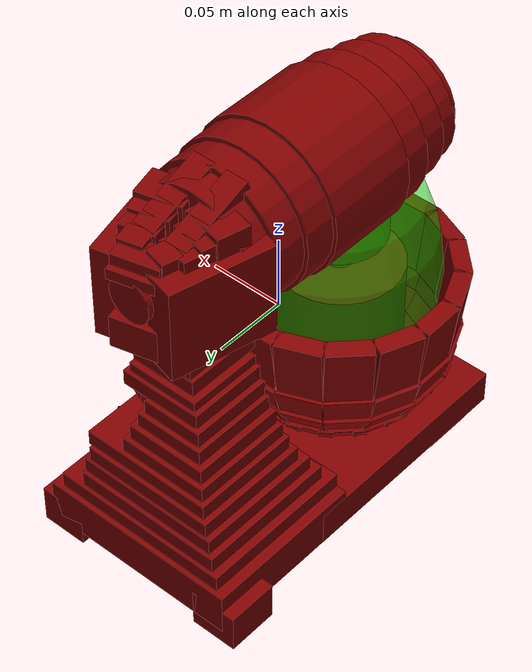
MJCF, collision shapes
<?xml version='1.0' encoding='UTF-8'?>
<mujoco model="model">
  <option timestep="0.002" gravity="0.0 0.0 -9.81"/>
  <compiler angle="radian"/>
  <asset>
    <mesh file="visuals/blender.obj" name="blender_vis"/>
    <mesh file="visuals/bowl.obj" name="bowl_vis"/>
    <mesh file="visuals/button_head_lock.obj" name="button_head_lock_vis"/>
    <mesh file="visuals/head.obj" name="head_vis"/>
    <mesh file="visuals/knob_speed.obj" name="knob_speed_vis"/>
    <mesh file="visuals/Body001.obj" name="Body001_vis"/>
    <texture file="visuals/T_BC001.png" name="Body001_material" type="2d"/>
    <material name="Body001_material" rgba="1 1 1 1.0" texture="Body001_material" shininess="0.1472135901451111" specular="0.657381"/>
    <texture file="visuals/T_BC001.png" name="bowl_material" type="2d"/>
    <material name="bowl_material" rgba="1 1 1 1.0" texture="bowl_material" shininess="0.1472135901451111" specular="1"/>
    <texture file="visuals/T_BC001.png" name="button_head_lock_material" type="2d"/>
    <material name="button_head_lock_material" rgba="1 1 1 1.0" texture="button_head_lock_material" shininess="0.1472135901451111" specular="0.657381"/>
    <texture file="visuals/T_BC001.png" name="head_material" type="2d"/>
    <material name="head_material" rgba="1 1 1 1.0" texture="head_material" shininess="0.4472135901451111" specular="0.3103448502657381"/>
    <texture file="visuals/T_BC001.png" name="blender_material" type="2d"/>
    <material name="blender_material" rgba="1 1 1 1.0" texture="blender_material" shininess="0.4472135901451111" specular="5"/>
    <texture file="visuals/T_BC001.png" name="knob_speed_material" type="2d"/>
    <material name="knob_speed_material" rgba="1 1 1 1.0" texture="knob_speed_material" shininess="0.4472135901451111" specular="0.3103448502657381"/>
  </asset>
  <default>
    <default class="visual">
      <geom conaffinity="0" contype="0" group="1" type="mesh"/>
    </default>
    <default class="collision">
      <geom group="0" rgba="0.5 0 0 0.5"/>
    </default>
    <default class="spawn">
      <geom group="0" rgba="1 1 1 0.5" contype="0" conaffinity="0"/>
      <site group="0" rgba="1 1 1 0.5"/>
    </default>
    <default class="region">
      <geom group="1" conaffinity="0" contype="0" rgba="0 1 0 0"/>
    </default>
  </default>
  <worldbody>
    <body>
      <body name="object">
        <geom mesh="Body001_vis" type="mesh" solimp="0.998 0.998 0.001" solref="0.001 1" friction="0.95 0.3 0.1" class="visual" material="Body001_material"/>
        <geom type="box" pos="0.00090541 0.07212468 -0.11507635" size="0.06909153610467911 0.0555466003715992 0.014421489089727402" quat="1.0 0.0 0.0 0.0" class="collision"/>
        <geom type="box" pos="-0.01017426 0.07840834 -0.04378773" size="0.031024672091007233 0.034848056733608246 0.005275134462863207" quat="1.0 0.0 0.0 0.0" class="collision"/>
        <geom type="box" pos="0.00080430 0.07091529 -0.09522438" size="0.06219308078289032 0.053709082305431366 0.005275134462863207" quat="1.0 0.0 0.0 0.0" class="collision"/>
        <geom type="box" pos="-0.00245736 0.07580597 -0.07429464" size="0.04955200105905533 0.04438085854053497 0.005275134462863207" quat="1.0 0.0 0.0 0.0" class="collision"/>
        <geom type="box" pos="-0.00449582 0.07408720 -0.08453226" size="0.051713284105062485 0.04852152243256569 0.005275134462863207" quat="1.0 0.0 0.0 0.0" class="collision"/>
        <geom type="box" pos="-0.00211854 0.07833359 -0.06394648" size="0.04600217193365097 0.04029778018593788 0.005275134462863207" quat="1.0 0.0 0.0 0.0" class="collision"/>
        <geom type="box" pos="0.00103503 0.07883264 -0.05386711" size="0.045344870537519455 0.037232231348752975 0.005275134462863207" quat="1.0 0.0 0.0 0.0" class="collision"/>
        <geom type="box" pos="-0.00991501 0.07722230 -0.02287789" size="0.02389548346400261 0.02974225953221321 0.005275134462863207" quat="1.0 0.0 0.0 0.0" class="collision"/>
        <geom type="box" pos="-0.01022610 0.07803503 -0.03314391" size="0.02770635485649109 0.032234884798526764 0.005275134462863207" quat="1.0 0.0 0.0 0.0" class="collision"/>
        <geom type="box" pos="-0.01008352 0.07579107 -0.01261186" size="0.02069382555782795 0.028311023488640785 0.005275134462863207" quat="1.0 0.0 0.0 0.0" class="collision"/>
        <geom type="box" pos="0.00093781 0.07443782 -0.00262581" size="0.028137603774666786 0.02695777267217636 0.005275134462863207" quat="1.0 0.0 0.0 0.0" class="collision"/>
        <geom type="box" pos="0.00101559 0.07331788 0.00579673" size="0.024948909878730774 0.025837844237685204 0.0033383138943463564" quat="1.0 0.0 0.0 0.0" class="collision"/>
        <geom type="box" pos="0.00090541 -0.04308769 -0.11817537" size="0.06909153610467911 0.08008985221385956 0.011497527360916138" quat="1.0 0.0 0.0 0.0" class="collision"/>
        <geom type="box" pos="-0.06082251 0.11042195 -0.12574148" size="0.015855111181735992 0.017249327152967453 0.013206470757722855" quat="1.0 0.0 0.0 0.0" class="collision"/>
        <geom type="box" pos="0.06235080 0.11042195 -0.12574148" size="0.015855111181735992 0.017249327152967453 0.013206470757722855" quat="1.0 0.0 0.0 0.0" class="collision"/>
        <geom type="box" pos="0.05597572 -0.09204621 -0.12574148" size="0.009480033069849014 0.017249327152967453 0.013206470757722855" quat="1.0 0.0 0.0 0.0" class="collision"/>
        <geom type="box" pos="-0.05405603 -0.09204621 -0.12574148" size="0.009480033069849014 0.017249327152967453 0.013206470757722855" quat="1.0 0.0 0.0 0.0" class="collision"/>
        <geom type="box" pos="0.05597572 -0.09204621 -0.12574148" size="0.009480033069849014 0.017249327152967453 0.013206470757722855" quat="1.0 0.0 0.0 0.0" class="collision"/>
        <body name="bowl">
          <geom mesh="bowl_vis" type="mesh" solimp="0.998 0.998 0.001" solref="0.001 1" friction="0.95 0.3 0.1" class="visual" material="bowl_material"/>
          <geom type="box" pos="-0.00134412 -0.12422087 -0.02438593" size="0.014861696399748325 0.005788303446024656 0.022114291787147522" quat="0.06294766813516617 -0.9980168342590332 2.2160424043668768e-16 -8.28914765480975e-24" class="collision"/>
          <geom type="box" pos="-0.00134412 -0.12275018 -0.05442249" size="0.014861696399748325 0.004200310911983252 0.009575771167874336" quat="0.1358821839094162 -0.9907249808311462 2.1998653985632997e-16 -9.129735905080095e-23" class="collision"/>
          <geom type="box" pos="-0.00134412 -0.11773674 -0.07120506" size="0.014861696399748325 0.004200310911983252 0.009575771167874336" quat="0.2822636663913727 -0.9593368768692017 2.130155910493251e-16 -6.397050416368678e-23" class="collision"/>
          <geom type="box" pos="-0.00134412 -0.10835347 -0.08678000" size="0.014861696399748325 0.004200310911983252 0.009575771167874336" quat="0.3630664646625519 -0.931763231754303 2.068930913227832e-16 -5.347705115888792e-23" class="collision"/>
          <geom type="box" pos="-0.00134412 -0.09558712 -0.09814205" size="0.014861696399748325 0.004200309980660677 0.009575771167874336" quat="0.5544174909591675 -0.8322386741638184 1.847941473127063e-16 -6.556123271273409e-23" class="collision"/>
          <geom type="box" pos="0.02993206 -0.08184658 -0.09814205" size="0.014861696399748325 0.004200309980660677 0.009575771167874336" quat="0.5075920820236206 -0.7619489431381226 -0.3347463309764862 0.2229999601840973" class="collision"/>
          <geom type="box" pos="0.05102099 -0.10121539 -0.02438597" size="0.014861696399748325 0.005788303446024656 0.022114291787147522" quat="0.05763139948248863 -0.9137255549430847 -0.4014264643192291 0.025319166481494904" class="collision"/>
          <geom type="box" pos="0.04993782 -0.10022056 -0.05442252" size="0.014861696399748325 0.004200310911983252 0.009575771167874336" quat="0.12440598011016846 -0.9070496559143066 -0.39849328994750977 0.05465516075491905" class="collision"/>
          <geom type="box" pos="0.04624538 -0.09682930 -0.07120509" size="0.014861696399748325 0.004200310911983252 0.009575771167874336" quat="0.25842416286468506 -0.8783124089241028 -0.3858684003353119 0.11353327333927155" class="collision"/>
          <geom type="box" pos="0.03933455 -0.09048215 -0.08678003" size="0.014861696399748325 0.004200310911983252 0.009575771167874336" quat="0.3324023187160492 -0.8530676960945129 -0.3747776448726654 0.1460341215133667" class="collision"/>
          <geom type="box" pos="0.05388274 -0.05236688 -0.08678005" size="0.014861696399748325 0.004200310911983252 0.009575771167874336" quat="0.2549673020839691 -0.6543397307395935 -0.6633414626121521 0.2584748864173889" class="collision"/>
          <geom type="box" pos="0.06326514 -0.05223868 -0.07120509" size="0.014861696399748325 0.004200310911983252 0.009575771167874336" quat="0.19822260737419128 -0.6737037897109985 -0.682971715927124 0.2009495049715042" class="collision"/>
          <geom type="box" pos="0.06827814 -0.05217019 -0.05442254" size="0.014861696399748325 0.004200310911983252 0.009575771167874336" quat="0.09542486071586609 -0.6957464218139648 -0.7053175568580627 0.09673759341239929" class="collision"/>
          <geom type="box" pos="0.06974872 -0.05215010 -0.02438598" size="0.014861696399748325 0.005788303446024656 0.022114291787147522" quat="0.04420587420463562 -0.700867235660553 -0.7105087637901306 0.04481399804353714" class="collision"/>
          <geom type="box" pos="0.04111758 -0.05254129 -0.09814205" size="0.014861696399748325 0.004200309980660677 0.009575771167874336" quat="0.389344722032547 -0.5844477415084839 -0.5924883484840393 0.3947012424468994" class="collision"/>
          <geom type="box" pos="0.02799422 -0.02241976 -0.09814205" size="0.014861696399748325 0.004200309980660677 0.009575771167874336" quat="0.20633824169635773 -0.30973535776138306 -0.7724540829658508 0.5145903825759888" class="collision"/>
          <geom type="box" pos="0.04777652 -0.00171817 -0.02438600" size="0.014861696399748325 0.005788303446024656 0.022114291787147522" quat="0.02342754602432251 -0.3714331388473511 -0.9263233542442322 0.0584261491894722" class="collision"/>
          <geom type="box" pos="0.04676044 -0.00278146 -0.05442255" size="0.014861696399748325 0.004200310911983252 0.009575771167874336" quat="-0.05057153105735779 0.36871933937072754 0.9195553064346313 -0.126121386885643" class="collision"/>
          <geom type="box" pos="0.04329678 -0.00640609 -0.07120509" size="0.014861696399748325 0.004200310911983252 0.009575771167874336" quat="0.10505060106515884 -0.35703763365745544 -0.8904219269752502 0.26198717951774597" class="collision"/>
          <geom type="box" pos="0.03681414 -0.01318998 -0.08678005" size="0.014861696399748325 0.004200310911983252 0.009575771167874336" quat="-0.13512299954891205 0.3467754125595093 0.8648290038108826 -0.33698570728302" class="collision"/>
          <geom type="box" pos="0.01901948 -0.00178045 -0.08678007" size="0.014861696399748325 0.004200310911983252 0.009575771167874336" quat="-0.06814071536064148 0.1748742014169693 0.9152055978775024 -0.35661545395851135" class="collision"/>
          <geom type="box" pos="0.02247901 0.00694179 -0.07120511" size="0.014861696399748325 0.004200310911983252 0.009575771167874336" quat="-0.052975501865148544 0.18004927039146423 0.942289412021637 -0.27724817395210266" class="collision"/>
          <geom type="box" pos="0.02432744 0.01160209 -0.05442257" size="0.014861696399748325 0.004200310911983252 0.009575771167874336" quat="0.02550266869366169 -0.18594017624855042 -0.9731197953224182 0.13346806168556213" class="collision"/>
          <geom type="box" pos="0.02486968 0.01296919 -0.02438602" size="0.014861696399748325 0.005788303446024656 0.022114291787147522" quat="0.011814260855317116 -0.18730878829956055 -0.9802820682525635 0.06182962656021118" class="collision"/>
          <geom type="box" pos="0.01431262 -0.01364743 -0.09814205" size="0.014861696399748325 0.004200309980660677 0.009575771167874336" quat="-0.1040535569190979 0.15619543194770813 0.8174498677253723 -0.5445654988288879" class="collision"/>
          <geom type="box" pos="-0.00155415 -0.01065632 -0.09814205" size="0.014861696399748325 0.004200309980660677 0.009575771167874336" quat="0.0013710921630263329 -0.002058016834780574 0.8322361707687378 -0.554415762424469" class="collision"/>
          <geom type="box" pos="-0.00169577 0.01797718 -0.02438604" size="0.014861696399748325 0.005788303446024656 0.022114291787147522" quat="-0.00015559075109194964 0.002468019025400281 -0.9980137348175049 0.06294814497232437" class="collision"/>
          <geom type="box" pos="-0.00168849 0.01650647 -0.05442259" size="0.014861696399748325 0.004200310911983252 0.009575771167874336" quat="-0.0003359524707775563 0.0024499923456460238 -0.9907218813896179 0.1358824521303177" class="collision"/>
          <geom type="box" pos="-0.00166370 0.01149305 -0.07120512" size="0.014861696399748325 0.004200310911983252 0.009575771167874336" quat="0.0006980891921557486 -0.00237234216183424 0.9593337774276733 -0.28226324915885925" class="collision"/>
          <geom type="box" pos="-0.00161729 0.00210988 -0.08678008" size="0.014861696399748325 0.004200310911983252 0.009575771167874336" quat="-0.000897764868568629 0.00230420078150928 -0.9317601323127747 0.36306604743003845" class="collision"/>
          <geom type="box" pos="-0.02240123 -0.00206096 -0.08678009" size="0.014861696399748325 0.004200310911983252 0.009575771167874336" quat="-0.07055433094501495 0.1810682713985443 -0.9140002131462097 0.3561460077762604" class="collision"/>
          <geom type="box" pos="-0.02597859 0.00661363 -0.07120514" size="0.014861696399748325 0.004200310911983252 0.009575771167874336" quat="-0.05485193431377411 0.18642659485340118 -0.9410483837127686 0.27688324451446533" class="collision"/>
          <geom type="box" pos="-0.02788997 0.01124846 -0.05442260" size="0.014861696399748325 0.004200310911983252 0.009575771167874336" quat="-0.02640584111213684 0.19252608716487885 -0.9718382358551025 0.13329249620437622" class="collision"/>
          <geom type="box" pos="-0.02845068 0.01260812 -0.02438605" size="0.014861696399748325 0.005788303446024656 0.022114291787147522" quat="0.012232762761414051 -0.19394321739673615 0.9789910912513733 -0.061748433858156204" class="collision"/>
          <geom type="box" pos="-0.01753408 -0.01386311 -0.09814205" size="0.014861696399748325 0.004200309980660677 0.009575771167874336" quat="0.10773929953575134 -0.16172783076763153 0.8163732886314392 -0.5438483357429504" class="collision"/>
          <geom type="box" pos="-0.03132925 -0.02305114 -0.09814205" size="0.014861696399748325 0.004200309980660677 0.009575771167874336" quat="0.21180303394794464 -0.31793850660324097 0.7691140174865723 -0.5123653411865234" class="collision"/>
          <geom type="box" pos="-0.05154772 -0.00277521 -0.02438606" size="0.014861696399748325 0.005788303446024656 0.022114291787147522" quat="0.02404821664094925 -0.3812703490257263 0.9223179221153259 -0.0581740103662014" class="collision"/>
          <geom type="box" pos="-0.05050923 -0.00381666 -0.05442262" size="0.014861696399748325 0.004200310911983252 0.009575771167874336" quat="-0.05191101133823395 0.37848442792892456 -0.9155792593955994 0.1255764216184616" class="collision"/>
          <geom type="box" pos="-0.04696919 -0.00736676 -0.07120515" size="0.014861696399748325 0.004200310911983252 0.009575771167874336" quat="-0.10783275961875916 0.3664934039115906 -0.8865717649459839 0.2608547508716583" class="collision"/>
          <geom type="box" pos="-0.04034362 -0.01401115 -0.08678011" size="0.014861696399748325 0.004200310911983252 0.009575771167874336" quat="0.13870200514793396 -0.3559594452381134 0.8610893487930298 -0.33552905917167664" class="collision"/>
          <geom type="box" pos="-0.05261741 -0.03258789 -0.08678014" size="0.014861696399748325 0.004200310911983252 0.009575771167874336" quat="0.2034848928451538 -0.5222156643867493 0.7716687321662903 -0.30068597197532654" class="collision"/>
          <geom type="box" pos="-0.06132816 -0.02909946 -0.07120519" size="0.014861696399748325 0.004200310911983252 0.009575771167874336" quat="0.15819789469242096 -0.5376695990562439 0.7945050001144409 -0.23376624286174774" class="collision"/>
          <geom type="box" pos="-0.06598232 -0.02723560 -0.05442266" size="0.014861696399748325 0.004200310911983252 0.009575771167874336" quat="0.07615723460912704 -0.5552616119384766 0.8205000162124634 -0.11253602802753448" class="collision"/>
          <geom type="box" pos="-0.06734766 -0.02668882 -0.02438611" size="0.014861696399748325 0.005788303446024656 0.022114291787147522" quat="-0.03528023138642311 0.5593484044075012 -0.8265390396118164 0.052133094519376755" class="collision"/>
          <geom type="box" pos="-0.04076607 -0.03733404 -0.09814205" size="0.014861696399748325 0.004200310446321964 0.009575771167874336" quat="0.31072869896888733 -0.4664364457130432 0.68924480676651 -0.4591583013534546" class="collision"/>
          <geom type="box" pos="-0.04379832 -0.05410808 -0.09814205" size="0.014861696399748325 0.004200309980660677 0.009575771167874336" quat="0.3965601623058319 -0.5952785015106201 0.5816054344177246 -0.3874514698982239" class="collision"/>
          <geom type="box" pos="-0.07242454 -0.05477334 -0.02438612" size="0.014861696399748325 0.005788303446024656 0.022114291787147522" quat="0.04502575099468231 -0.7138552665710449 0.6974583268165588 -0.04399153217673302" class="collision"/>
          <geom type="box" pos="-0.07095417 -0.05473917 -0.05442267" size="0.014861696399748325 0.004200310911983252 0.009575771167874336" quat="0.0971938967704773 -0.7086394429206848 0.6923624873161316 -0.09496141225099564" class="collision"/>
          <geom type="box" pos="-0.06594202 -0.05462269 -0.07120520" size="0.014861696399748325 0.004200310911983252 0.009575771167874336" quat="0.2018965184688568 -0.686188280582428 0.6704269647598267 -0.1972591131925583" class="collision"/>
          <geom type="box" pos="-0.05656125 -0.05440468 -0.08678015" size="0.014861696399748325 0.004200310911983252 0.009575771167874336" quat="0.25969287753105164 -0.6664654016494751 0.6511571407318115 -0.25372788310050964" class="collision"/>
          <geom type="box" pos="-0.05176507 -0.07566715 -0.08678017" size="0.014861696399748325 0.004200310911983252 0.009575771167874336" quat="0.3046526312828064 -0.781848132610321 0.5068483352661133 -0.19749704003334045" class="collision"/>
          <geom type="box" pos="-0.06033102 -0.07949741 -0.07120522" size="0.014861696399748325 0.004200310911983252 0.009575771167874336" quat="0.23685023188591003 -0.804985523223877 0.5218476057052612 -0.15354280173778534" class="collision"/>
          <geom type="box" pos="-0.06490780 -0.08154392 -0.05442269" size="0.014861696399748325 0.004200310911983252 0.009575771167874336" quat="0.11402078717947006 -0.8313233852386475 0.538922131061554 -0.07391627132892609" class="collision"/>
          <geom type="box" pos="-0.06625046 -0.08214429 -0.02438614" size="0.014861696399748325 0.005788303446024656 0.02211429364979267" quat="0.05282099172472954 -0.8374422788619995 0.5428884029388428 -0.03424224257469177" class="collision"/>
          <geom type="box" pos="-0.04011072 -0.07045593 -0.09814205" size="0.014861696399748325 0.004200309980660677 0.009575771167874336" quat="0.465215265750885 -0.6983368992805481 0.4527105987071991 -0.301584929227829" class="collision"/>
          <geom type="box" pos="-0.03079870 -0.08371167 -0.09814205" size="0.014861696399748325 0.004200309980660677 0.009575771167874336" quat="0.5141980051994324 -0.7718653082847595 0.311199814081192 -0.20731379091739655" class="collision"/>
          <geom type="box" pos="-0.05065950 -0.10433819 -0.02438616" size="0.014861696399748325 0.005788303446024656 0.022114291787147522" quat="0.058382660150527954 -0.9256172180175781 0.373189240694046 -0.023538650944828987" class="collision"/>
          <geom type="box" pos="-0.04963935 -0.10327872 -0.05442270" size="0.014861696399748325 0.004200310911983252 0.009575771167874336" quat="0.12602625787258148 -0.9188542366027832 0.370462566614151 -0.050811123102903366" class="collision"/>
          <geom type="box" pos="-0.04616193 -0.09966724 -0.07120523" size="0.014861696399748325 0.004200310911983252 0.009575771167874336" quat="0.2617884576320648 -0.8897429704666138 0.35872548818588257 -0.10554757714271545" class="collision"/>
          <geom type="box" pos="-0.03965359 -0.09290795 -0.08678017" size="0.014861696399748325 0.004200310911983252 0.009575771167874336" quat="0.33672982454299927 -0.8641694188117981 0.3484147787094116 -0.13576233386993408" class="collision"/>
          <geom type="box" pos="-0.02160608 -0.10450271 -0.08678019" size="0.014861696399748325 0.004200310911983252 0.009575771167874336" quat="0.3566835820674896 -0.9153778553009033 0.17396840453147888 -0.06778804212808609" class="collision"/>
          <geom type="box" pos="-0.02504836 -0.11323181 -0.07120524" size="0.014861696399748325 0.004200310911983252 0.009575771167874336" quat="0.27730149030685425 -0.9424667954444885 0.1791166216135025 -0.05270139127969742" class="collision"/>
          <geom type="box" pos="-0.02688757 -0.11789578 -0.05442273" size="0.014861696399748325 0.004200310911983252 0.009575771167874336" quat="0.13349434733390808 -0.9733030796051025 0.18497751653194427 -0.025370797142386436" class="collision"/>
          <geom type="box" pos="-0.02742713 -0.11926402 -0.02438617" size="0.014861696399748325 0.005788303446024656 0.022114291787147522" quat="0.061842385679483414 -0.980466902256012 0.18633858859539032 -0.011753199622035027" class="collision"/>
          <geom type="box" pos="-0.01692271 -0.09262640 -0.09814205" size="0.014861696399748325 0.004200309980660677 0.009575771167874336" quat="0.5446682572364807 -0.8176040053367615 0.15538640320301056 -0.10351467877626419" class="collision"/>
          <geom type="box" pos="0.01590441 -0.09192637 -0.09814205" size="0.014861696399748325 0.004200309980660677 0.009575771167874336" quat="0.5423372387886047 -0.8141054511070251 -0.1727825403213501 0.11510352790355682" class="collision"/>
          <geom type="box" pos="0.02753486 -0.11809199 -0.02438619" size="0.014861696399748325 0.005788303446024656 0.022114291787147522" quat="0.06157786399126053 -0.9762712717056274 -0.20719988644123077 0.013069038279354572" class="collision"/>
          <geom type="box" pos="0.02693747 -0.11674797 -0.05442274" size="0.014861696399748325 0.004200310911983252 0.009575771167874336" quat="0.13292323052883148 -0.9691382050514221 -0.20568598806858063 0.028211092576384544" class="collision"/>
          <geom type="box" pos="0.02490109 -0.11216666 -0.07120526" size="0.014861696399748325 0.004200310911983252 0.009575771167874336" quat="0.2761147618293762 -0.938433825969696 -0.19916951656341553 0.058601509779691696" class="collision"/>
          <geom type="box" pos="0.02108981 -0.10359223 -0.08678020" size="0.014861696399748325 0.004200310911983252 0.009575771167874336" quat="0.3551572561264038 -0.9114607572555542 -0.1934448480606079 0.07537718117237091" class="collision"/>
          <geom type="box" pos="0.05023125 -0.07288408 -0.08678022" size="0.014861696399748325 0.004200310911983252 0.009575771167874336" quat="0.29915276169776917 -0.7677323222160339 -0.5279852747917175 0.2057334929704666" class="collision"/>
          <geom type="box" pos="0.05899333 -0.07624153 -0.07120528" size="0.014861696399748325 0.004200310911983252 0.009575771167874336" quat="0.2325744777917862 -0.7904520034790039 -0.5436100959777832 0.1599462330341339" class="collision"/>
          <geom type="box" pos="0.06367494 -0.07803541 -0.05442276" size="0.014861696399748325 0.004200310911983252 0.009575771167874336" quat="0.11196264624595642 -0.816314697265625 -0.5613963603973389 0.07699901610612869" class="collision"/>
          <geom type="box" pos="0.06504836 -0.07856169 -0.02438621" size="0.014861696399748325 0.005788303446024656 0.022114291787147522" quat="0.051867738366127014 -0.8223228454589844 -0.5655285120010376 0.03567052260041237" class="collision"/>
          <geom type="box" pos="0.03831006 -0.06831612 -0.09814205" size="0.014861696399748325 0.004200309980660677 0.009575771167874336" quat="0.456816166639328 -0.6857289671897888 -0.47158995270729065 0.31416189670562744" class="collision"/>
          <geom type="box" pos="0.03743657 -0.03581857 -0.09814205" size="0.014861696399748325 0.004200309980660677 0.009575771167874336" quat="0.30177420377731323 -0.4529947340488434 -0.6981526017189026 0.4650925099849701" class="collision"/>
          <geom type="box" pos="0.06358590 -0.02415146 -0.02438622" size="0.014861696399748325 0.005788303446024656 0.022114291787147522" quat="0.03426405414938927 -0.5432288646697998 -0.8372214436531067 0.052807439118623734" class="collision"/>
          <geom type="box" pos="0.06224271 -0.02475074 -0.05442277" size="0.014861696399748325 0.004200310911983252 0.009575771167874336" quat="-0.07396280020475388 0.5392598509788513 0.8311042785644531 -0.11399120837450027" class="collision"/>
          <geom type="box" pos="0.05766424 -0.02679354 -0.07120529" size="0.014861698262393475 0.004200310911983252 0.009575771167874336" quat="0.1536395251750946 -0.5221751928329468 -0.8047728538513184 0.23678818345069885" class="collision"/>
          <geom type="box" pos="0.04909516 -0.03061683 -0.08678023" size="0.014861696399748325 0.004200310911983252 0.009575771167874336" quat="0.19762131571769714 -0.5071663856506348 -0.7816415429115295 0.3045727014541626" class="collision"/>
          <geom type="cylinder" pos="-0.00134412 -0.05312147 -0.10207390" size="0.03230029344558716 0.0034746502060443163" quat="1.0 0.0 0.0 0.0" class="collision"/>
          <geom name="reg_bowl" type="ellipsoid" pos="-0.00100042 -0.05212031 -0.00333006" size="0.06395651400089264 0.06517525762319565 0.09453638643026352" rgba="0 1 0 0.5" class="region"/>
        </body>
        <body name="button_head_lock">
          <joint axis="-0.9254167079925537 0.33682411909103394 -0.17364822328090668" pos="0.02858290 0.07695929 -0.02700949" limited="true" name="button_head_lock_joint" range="0.0 0.004" type="slide" damping="1" frictionloss="1" armature=".01" stiffness="1" springref="-0.4"/>
          <geom mesh="button_head_lock_vis" type="mesh" solimp="0.998 0.998 0.001" solref="0.001 1" friction="0.95 0.3 0.1" class="visual" material="button_head_lock_material"/>
          <geom class="collision" type="cylinder" pos="0.02846006 0.07689660 -0.02724859" size="0.012524952180683613 0.005685003008693457" quat="0.7544063329696655 0.13302262127399445 0.6330223083496094 -0.1116192564368248" name="button_head_lock_main"/>
        </body>
        <body name="head">
          <joint axis="-1.0 0.0 0.0" pos="0.00006985 0.09385220 0.02728914" limited="true" name="head_joint" range="0.0 1.5707963267948966" type="hinge" damping="1" frictionloss="1" armature=".01" stiffness="0.05"/>
          <geom mesh="head_vis" type="mesh" solimp="0.998 0.998 0.001" solref="0.001 1" friction="0.95 0.3 0.1" class="visual" material="head_material"/>
          <geom type="box" pos="0.00097670 0.06985051 0.02791563" size="0.020321423187851906 0.026907220482826233 0.005275134462863207" quat="1.0 0.0 0.0 0.0" class="collision"/>
          <geom type="box" pos="0.00104151 0.07169761 0.01799958" size="0.02271942049264908 0.02609708532691002 0.005275134462863207" quat="1.0 0.0 0.0 0.0" class="collision"/>
          <geom type="box" pos="0.00089893 0.06897556 0.03802611" size="0.016899406909942627 0.028106221929192543 0.005275134462863207" quat="1.0 0.0 0.0 0.0" class="collision"/>
          <geom type="box" pos="0.00081467 0.07345529 0.05085864" size="0.01588188111782074 0.028106221929192543 0.007841641083359718" quat="1.0 0.0 0.0 0.0" class="collision"/>
          <geom type="box" pos="-0.02719509 0.08574043 0.08025810" size="0.011400355957448483 0.034505292773246765 0.031412914395332336" quat="0.9928795695304871 0.0 -0.0 -0.11912240087985992" class="collision"/>
          <geom type="box" pos="0.02464552 0.08574043 0.08025810" size="0.011400355957448483 0.034505292773246765 0.031412914395332336" quat="0.9928795695304871 0.0 0.0 0.11912237107753754" class="collision"/>
          <geom type="box" pos="0.01757308 0.07123463 0.11764591" size="0.01523706503212452 0.01082881260663271 0.008603304624557495" quat="0.9928795695304871 0.0 0.0 0.11912237107753754" class="collision"/>
          <geom type="box" pos="0.01396980 0.09446469 0.11423478" size="0.011692360043525696 0.0075026764534413815 0.00519217737019062" quat="0.9928795695304871 0.0 0.0 0.11912237107753754" class="collision"/>
          <geom type="box" pos="0.01543960 0.08365111 0.11570919" size="0.013262245804071426 0.0075225830078125 0.0066665830090641975" quat="0.9928795695304871 0.0 0.0 0.11912237107753754" class="collision"/>
          <geom type="box" pos="0.00985668 0.10471686 0.11423478" size="0.008138880133628845 0.006831272505223751 0.00519217737019062" quat="0.9928795695304871 0.0 0.0 0.11912237107753754" class="collision"/>
          <geom type="box" pos="-0.00041331 0.10802370 0.06243790" size="0.016720132902264595 0.014281469397246838 0.010994031094014645" quat="0.9928795695304871 0.0 0.0 0.11912237107753754" class="collision"/>
          <geom type="box" pos="-0.00041331 0.10994318 0.11285582" size="0.01541457325220108 0.008918901905417442 0.00381322018802166" quat="0.9928795695304871 0.0 0.0 0.11912237107753754" class="collision"/>
          <geom type="box" pos="-0.00041331 0.11354290 0.10486232" size="0.01541457325220108 0.008918901905417442 0.00381322018802166" quat="0.9928795695304871 0.0 0.0 0.11912237107753754" class="collision"/>
          <geom type="box" pos="-0.01139260 0.10474360 0.11423478" size="0.008079694584012032 0.006844376679509878 0.00519217737019062" quat="0.9928795695304871 0.0 -0.0 -0.11912240087985992" class="collision"/>
          <geom type="box" pos="-0.01692111 0.08365111 0.11570919" size="0.013262245804071426 0.0075225830078125 0.0066665830090641975" quat="0.9928795695304871 0.0 -0.0 -0.11912240087985992" class="collision"/>
          <geom type="box" pos="-0.01545131 0.09446469 0.11423478" size="0.011692360043525696 0.0075026764534413815 0.00519217737019062" quat="0.9928795695304871 0.0 -0.0 -0.11912240087985992" class="collision"/>
          <geom type="box" pos="-0.01905460 0.07123463 0.11764591" size="0.01523706503212452 0.01082881260663271 0.008603304624557495" quat="0.9928795695304871 0.0 -0.0 -0.11912240087985992" class="collision"/>
          <geom type="box" pos="-0.01275142 0.07233524 0.12315989" size="0.007635682355612516 0.026907220482826233 0.005275134462863207" quat="0.9845778346061707 -0.17494721710681915 3.884608570521734e-17 7.767962243087427e-24" class="collision"/>
          <geom type="box" pos="0.01096898 0.07233524 0.12315989" size="0.007635682355612516 0.026907220482826233 0.005275134462863207" quat="0.9845778346061707 -0.17494721710681915 3.884608570521734e-17 7.767962243087427e-24" class="collision"/>
          <geom type="cylinder" pos="0.00111250 0.06194935 0.08966627" size="0.043540891259908676 0.009288307279348373" quat="0.7071067094802856 0.7071068286895752 0.0 0.0" class="collision"/>
          <geom type="cylinder" pos="-0.00012501 0.11864250 0.08966627" size="0.014777465723454952 0.0031523846555501223" quat="0.7071067094802856 0.7071068286895752 0.0 0.0" class="collision"/>
          <geom type="cylinder" pos="0.00111250 0.04206332 0.08966627" size="0.04723939672112465 0.010077286511659622" quat="0.7071067094802856 0.7071068286895752 0.0 0.0" class="collision"/>
          <geom type="cylinder" pos="0.00111250 0.02114466 0.08966627" size="0.0498279444873333 0.010629485361278057" quat="0.7071067094802856 0.7071068286895752 0.0 0.0" class="collision"/>
          <geom type="cylinder" pos="0.00111250 -0.02141911 0.08966627" size="0.052161362022161484 0.03163669630885124" quat="0.7071067094802856 0.7071068286895752 0.0 0.0" class="collision"/>
          <geom type="cylinder" pos="0.00111250 -0.06205951 0.08966627" size="0.0498279444873333 0.010629485361278057" quat="0.7071067094802856 0.7071068286895752 0.0 0.0" class="collision"/>
          <geom type="cylinder" pos="0.00111250 -0.08236938 0.08966627" size="0.045842718333005905 0.009779341518878937" quat="0.7071067094802856 0.7071068286895752 0.0 0.0" class="collision"/>
          <geom type="cylinder" pos="0.00111250 -0.10803376 0.08966627" size="0.036301977932453156 0.007201514672487974" quat="0.7071067094802856 0.7071068286895752 0.0 0.0" class="collision"/>
          <geom type="cylinder" pos="-0.00024429 -0.05186586 0.03882329" size="0.03184203431010246 0.014139351435005665" quat="1.0 0.0 0.0 0.0" class="collision"/>
          <geom type="cylinder" pos="-0.00015514 -0.11213494 0.08838182" size="0.026492083445191383 0.006463841535151005" quat="0.7071067094802856 0.7071068286895752 0.0 0.0" class="collision"/>
          <geom type="box" pos="0.00104151 0.07641776 0.10393718" size="0.02271942049264908 0.030817240476608276 0.005275134462863207" quat="1.0 0.0 0.0 0.0" class="collision"/>
          <geom type="cylinder" pos="0.00111250 -0.09848325 0.08966627" size="0.04256439581513405 0.008443840779364109" quat="0.7071067094802856 0.7071068286895752 0.0 0.0" class="collision"/>
          <body name="blender">
            <joint axis="0.0 0.0 1.0" pos="-0.00280687 -0.05247129 -0.02619979" limited="false" name="blender_joint" range="0 360" type="hinge" damping="1" frictionloss="1" armature=".01" stiffness="0.05"/>
            <geom mesh="blender_vis" type="mesh" solimp="0.998 0.998 0.001" solref="0.001 1" friction="0.95 0.3 0.1" class="visual" material="blender_material"/>
            <geom type="cylinder" pos="-0.00280687 -0.05247132 0.00695033" size="0.00852424930781126 0.00852424930781126" quat="1.0 0.0 0.0 0.0" class="collision"/>
            <geom type="cylinder" pos="-0.00280687 -0.05247132 0.01969077" size="0.0038067596033215523 0.004724207799881697" quat="1.0 0.0 0.0 0.0" class="collision"/>
            <geom type="cylinder" pos="-0.00280687 -0.05247132 -0.03846910" size="0.04068989306688309 0.04068989306688309" quat="1.0 0.0 0.0 0.0" class="collision"/>
          </body>
        </body>
        <body name="knob_speed">
          <joint axis="-1.0 0.0 0.0" pos="0.05224093 0.07936058 -0.07571408" limited="true" name="knob_speed_joint" range="0.0 3.6651914291880923" type="hinge" damping="0.05" armature="0.001"/>
          <geom mesh="knob_speed_vis" type="mesh" solimp="0.998 0.998 0.001" solref="0.001 1" friction="0.95 0.3 0.1" class="visual" material="knob_speed_material"/>
          <geom class="collision" type="box" pos="0.05503998 0.07922197 -0.07561122" size="0.006438411772251129 0.007004145532846451 0.00194904999807477" quat="0.4617486000061035 0.8870108723640442 0.0 0.0" name="knob_speed_main"/>
          <geom type="cylinder" pos="0.04863266 0.07922738 -0.07579639" size="0.007396616041660309 0.0010641607223078609" quat="0.7071068286895752 0.0 -0.7071067690849304 0.0" class="collision"/>
        </body>
        <geom class="region" name="reg_main" type="box" pos="0.0011562450000000002 0.0029676500000000022 -8.794499999999206e-05" size="0.075793555 0.1256842 0.140162095"/>
      </body>
    </body>
  </worldbody>
  <actuator>
    <motor name="button_head_lock_joint_actuator" joint="button_head_lock_joint" gear="0.5"/>
    <motor name="head_joint_actuator" joint="head_joint" gear="50"/>
    <motor name="knob_speed_joint_actuator" joint="knob_speed_joint" gear="8"/>
    <motor name="blender_joint_actuator" joint="blender_joint" gear="20"/>
  </actuator>
</mujoco>
